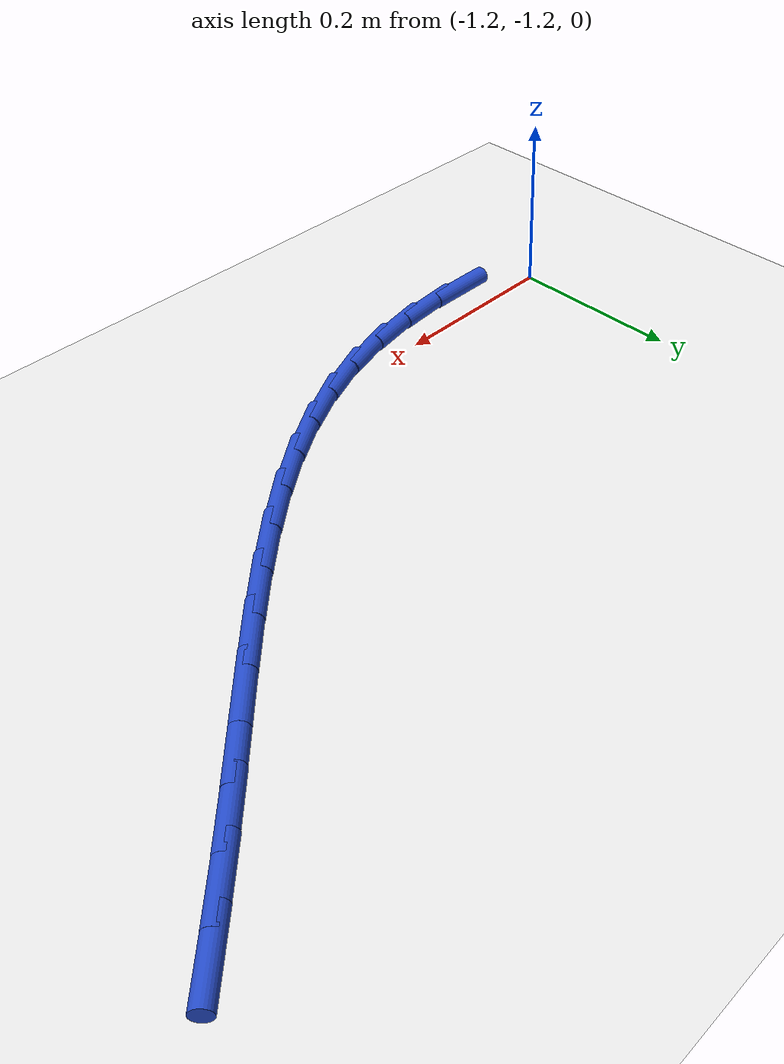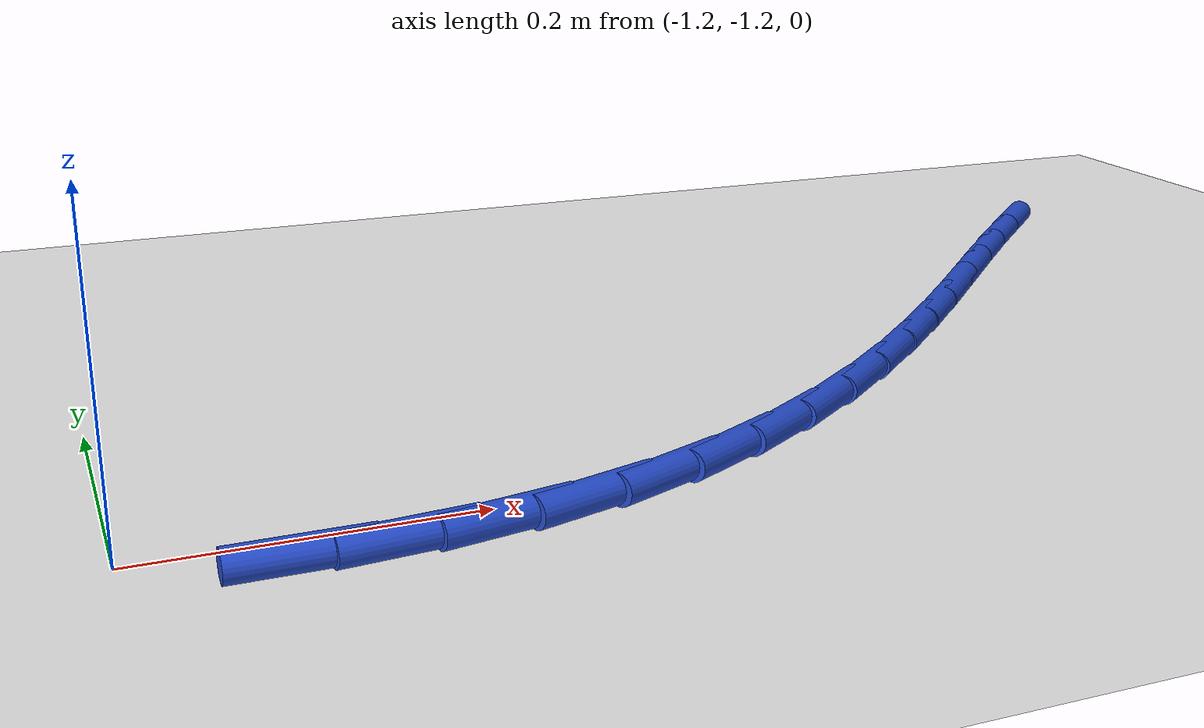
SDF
<sdf version="1.6">
 <world name="default">
  <model name="ground_plane">
   <static>1</static>
   <link name="link">
    <collision name="collision">
     <geometry><plane><normal>0 0 1</normal><size>100 100</size></plane></geometry>
     <surface><friction><ode><mu>100</mu><mu2>50</mu2></ode></friction></surface>
    </collision>
    <visual name="visual">
     <cast_shadows>0</cast_shadows>
     <geometry><plane><normal>0 0 1</normal><size>100 100</size></plane></geometry>
     <material>
      <script><uri>file://media/materials/scripts/gazebo.material</uri><name>Gazebo/WhiteGlow</name></script>
     </material>
    </visual>
   </link>
  </model>
  <model name="line">
   <link name="link_98">
    <pose>-1.1122794451327367 -1.2383912969145652 0.01 0 1.57 0.0038899702889870764</pose>
    <collision name="collision">
     <geometry><cylinder><radius>0.01</radius><length>0.08</length></cylinder></geometry>
    </collision>
    <visual name="visual">
     <material>
      <script><name>Gazebo/Blue</name><uri>file://media/materials/scripts/gazebo.material</uri></script>
     </material>
     <geometry><cylinder><radius>0.01</radius><length>0.08</length></cylinder></geometry>
    </visual>
   </link>
   <link name="link_99">
    <pose>-1.0567939728124256 -1.2381754589870906 0.01 0 1.57 0.0902799137068129</pose>
    <collision name="collision">
     <geometry><cylinder><radius>0.01</radius><length>0.08</length></cylinder></geometry>
    </collision>
    <visual name="visual">
     <material>
      <script><name>Gazebo/Blue</name><uri>file://media/materials/scripts/gazebo.material</uri></script>
     </material>
     <geometry><cylinder><radius>0.01</radius><length>0.08</length></cylinder></geometry>
    </visual>
   </link>
   <link name="link_100">
    <pose>-1.0025206794547379 -1.2332623153561468 0.01 0 1.57 0.18775018036365834</pose>
    <collision name="collision">
     <geometry><cylinder><radius>0.01</radius><length>0.08</length></cylinder></geometry>
    </collision>
    <visual name="visual">
     <material>
      <script><name>Gazebo/Blue</name><uri>file://media/materials/scripts/gazebo.material</uri></script>
     </material>
     <geometry><cylinder><radius>0.01</radius><length>0.08</length></cylinder></geometry>
    </visual>
   </link>
   <link name="link_101">
    <pose>-0.9498269714183012 -1.223251153211932 0.01 0 1.57 0.2960277453379945</pose>
    <collision name="collision">
     <geometry><cylinder><radius>0.01</radius><length>0.08</length></cylinder></geometry>
    </collision>
    <visual name="visual">
     <material>
      <script><name>Gazebo/Blue</name><uri>file://media/materials/scripts/gazebo.material</uri></script>
     </material>
     <geometry><cylinder><radius>0.01</radius><length>0.08</length></cylinder></geometry>
    </visual>
   </link>
   <link name="link_102">
    <pose>-0.8990639432009405 -1.2077689771956053 0.01 0 1.57 0.4033836864304878</pose>
    <collision name="collision">
     <geometry><cylinder><radius>0.01</radius><length>0.08</length></cylinder></geometry>
    </collision>
    <visual name="visual">
     <material>
      <script><name>Gazebo/Blue</name><uri>file://media/materials/scripts/gazebo.material</uri></script>
     </material>
     <geometry><cylinder><radius>0.01</radius><length>0.08</length></cylinder></geometry>
    </visual>
   </link>
   <link name="link_103">
    <pose>-0.8502840107888525 -1.1869503126475083 0.01 0 1.57 0.4983079817801617</pose>
    <collision name="collision">
     <geometry><cylinder><radius>0.01</radius><length>0.08</length></cylinder></geometry>
    </collision>
    <visual name="visual">
     <material>
      <script><name>Gazebo/Blue</name><uri>file://media/materials/scripts/gazebo.material</uri></script>
     </material>
     <geometry><cylinder><radius>0.01</radius><length>0.08</length></cylinder></geometry>
    </visual>
   </link>
   <link name="link_104">
    <pose>-0.8032780872431787 -1.1613740360822142 0.01 0 1.57 0.5794255636344737</pose>
    <collision name="collision">
     <geometry><cylinder><radius>0.01</radius><length>0.08</length></cylinder></geometry>
    </collision>
    <visual name="visual">
     <material>
      <script><name>Gazebo/Blue</name><uri>file://media/materials/scripts/gazebo.material</uri></script>
     </material>
     <geometry><cylinder><radius>0.01</radius><length>0.08</length></cylinder></geometry>
    </visual>
   </link>
   <link name="link_105">
    <pose>-0.7578282500863179 -1.1316340375443172 0.01 0 1.57 0.6467730944080451</pose>
    <collision name="collision">
     <geometry><cylinder><radius>0.01</radius><length>0.08</length></cylinder></geometry>
    </collision>
    <visual name="visual">
     <material>
      <script><name>Gazebo/Blue</name><uri>file://media/materials/scripts/gazebo.material</uri></script>
     </material>
     <geometry><cylinder><radius>0.01</radius><length>0.08</length></cylinder></geometry>
    </visual>
   </link>
   <link name="link_106">
    <pose>-0.7137165768406694 -1.0983242070784116 0.01 0 1.57 0.7010140621244935</pose>
    <collision name="collision">
     <geometry><cylinder><radius>0.01</radius><length>0.08</length></cylinder></geometry>
    </collision>
    <visual name="visual">
     <material>
      <script><name>Gazebo/Blue</name><uri>file://media/materials/scripts/gazebo.material</uri></script>
     </material>
     <geometry><cylinder><radius>0.01</radius><length>0.08</length></cylinder></geometry>
    </visual>
   </link>
   <link name="link_107">
    <pose>-0.67072514502863 -1.0620384347290905 0.01 0 1.57 0.7430582216654541</pose>
    <collision name="collision">
     <geometry><cylinder><radius>0.01</radius><length>0.08</length></cylinder></geometry>
    </collision>
    <visual name="visual">
     <material>
      <script><name>Gazebo/Blue</name><uri>file://media/materials/scripts/gazebo.material</uri></script>
     </material>
     <geometry><cylinder><radius>0.01</radius><length>0.08</length></cylinder></geometry>
    </visual>
   </link>
   <link name="link_108">
    <pose>-0.6286360321726007 -1.0233706105409497 0.01 0 1.57 0.7738091115802715</pose>
    <collision name="collision">
     <geometry><cylinder><radius>0.01</radius><length>0.08</length></cylinder></geometry>
    </collision>
    <visual name="visual">
     <material>
      <script><name>Gazebo/Blue</name><uri>file://media/materials/scripts/gazebo.material</uri></script>
     </material>
     <geometry><cylinder><radius>0.01</radius><length>0.08</length></cylinder></geometry>
    </visual>
   </link>
   <link name="link_109">
    <pose>-0.5872313157949789 -0.982914624558582 0.01 0 1.57 0.7940191907155831</pose>
    <collision name="collision">
     <geometry><cylinder><radius>0.01</radius><length>0.08</length></cylinder></geometry>
    </collision>
    <visual name="visual">
     <material>
      <script><name>Gazebo/Blue</name><uri>file://media/materials/scripts/gazebo.material</uri></script>
     </material>
     <geometry><cylinder><radius>0.01</radius><length>0.08</length></cylinder></geometry>
    </visual>
   </link>
   <link name="link_110">
    <pose>-0.5462930734181628 -0.9412643668265817 0.01 0 1.57 0.804216081319183</pose>
    <collision name="collision">
     <geometry><cylinder><radius>0.01</radius><length>0.08</length></cylinder></geometry>
    </collision>
    <visual name="visual">
     <material>
      <script><name>Gazebo/Blue</name><uri>file://media/materials/scripts/gazebo.material</uri></script>
     </material>
     <geometry><cylinder><radius>0.01</radius><length>0.08</length></cylinder></geometry>
    </visual>
   </link>
   <link name="link_111">
    <pose>-0.5056033825645524 -0.8990137273895433 0.01 0 1.57 0.8046690850887261</pose>
    <collision name="collision">
     <geometry><cylinder><radius>0.01</radius><length>0.08</length></cylinder></geometry>
    </collision>
    <visual name="visual">
     <material>
      <script><name>Gazebo/Blue</name><uri>file://media/materials/scripts/gazebo.material</uri></script>
     </material>
     <geometry><cylinder><radius>0.01</radius><length>0.08</length></cylinder></geometry>
    </visual>
   </link>
   <link name="link_112">
    <pose>-0.46494432075654574 -0.856756596292061 0.01 0 1.57 0.7953996414091596</pose>
    <collision name="collision">
     <geometry><cylinder><radius>0.01</radius><length>0.08</length></cylinder></geometry>
    </collision>
    <visual name="visual">
     <material>
      <script><name>Gazebo/Blue</name><uri>file://media/materials/scripts/gazebo.material</uri></script>
     </material>
     <geometry><cylinder><radius>0.01</radius><length>0.08</length></cylinder></geometry>
    </visual>
   </link>
   <link name="link_113">
    <pose>-0.4240987478217052 -0.8150857092786583 0.01 0 1.57 0.7817664739908176</pose>
    <collision name="collision">
     <geometry><cylinder><radius>0.01</radius><length>0.08</length></cylinder></geometry>
    </collision>
    <visual name="visual">
     <material>
      <script><name>Gazebo/Blue</name><uri>file://media/materials/scripts/gazebo.material</uri></script>
     </material>
     <geometry><cylinder><radius>0.01</radius><length>0.08</length></cylinder></geometry>
    </visual>
   </link>
   <link name="link_114">
    <pose>-0.3830353988696882 -0.7743195410239538 0.01 0 1.57 0.7765490595384608</pose>
    <collision name="collision">
     <geometry><cylinder><radius>0.01</radius><length>0.08</length></cylinder></geometry>
    </collision>
    <visual name="visual">
     <material>
      <script><name>Gazebo/Blue</name><uri>file://media/materials/scripts/gazebo.material</uri></script>
     </material>
     <geometry><cylinder><radius>0.01</radius><length>0.08</length></cylinder></geometry>
    </visual>
   </link>
  </model>
 </world>
</sdf>
